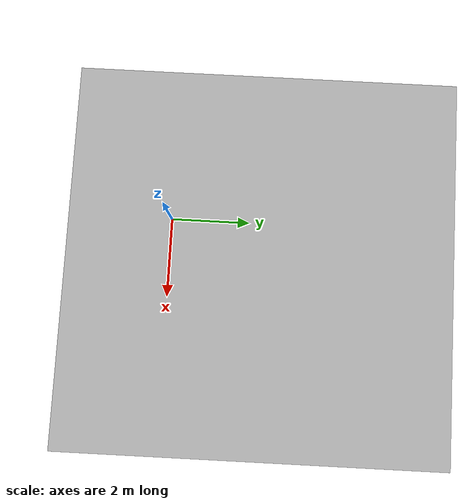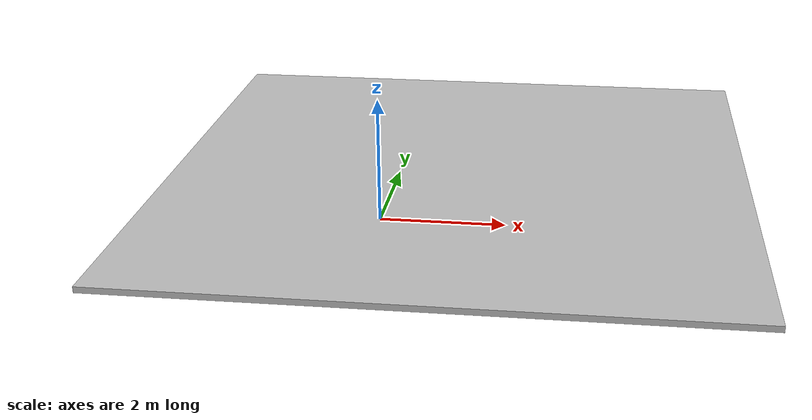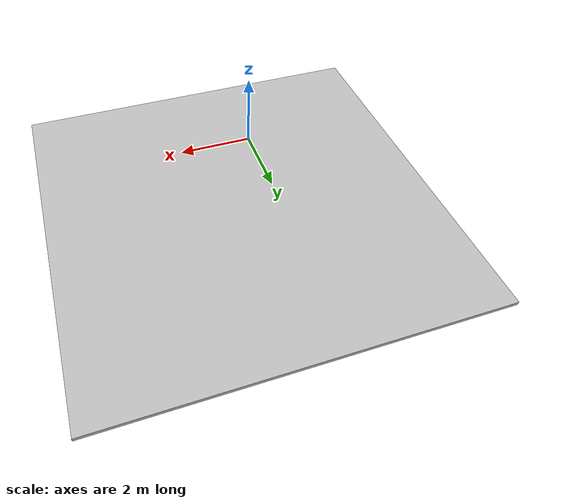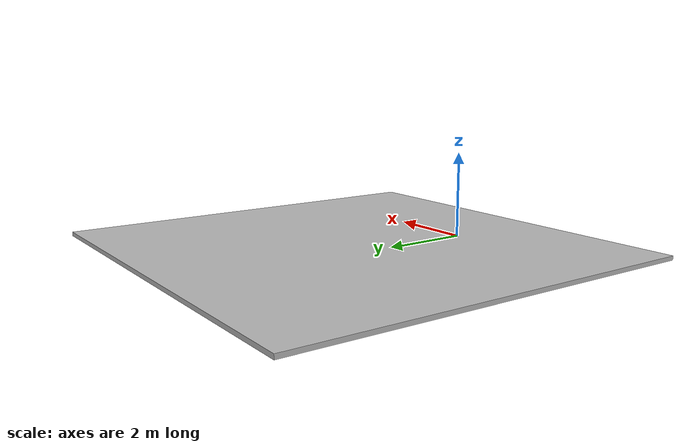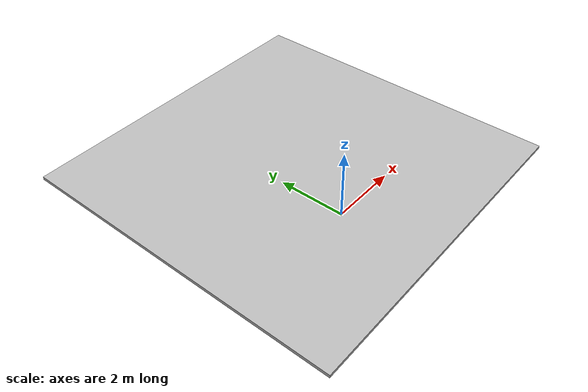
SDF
<?xml version="1.0"?>
<sdf version="1.4">
  <world name="default">
    <scene>
      <ambient>0 0 0 1</ambient>
      <shadows>0</shadows>
      <grid>0</grid>
      <background>0.7 0.7 0.7 1</background>
    </scene>
    <include>
      <uri>model://sun</uri>
    </include>
    <model name="ground">
      <pose>1 2.3 -.1 0 0 0</pose>
      <static>1</static>
      <link name="ground">
        <collision name="ground_coll">
          <geometry>
            <box>
              <size>10 10 .1</size>
            </box>
          </geometry>
          <surface>
            <contact>
              <ode/>
            </contact>
          </surface>
        </collision>
        <visual name="ground_vis">
          <geometry>
            <box>
              <size>10 10 .1</size>
            </box>
          </geometry>
          <material>
            <script>
              <uri>file:///home/riveria/CodeProjects/ROS/catkin_ws/src/psi/worlds/course.material</uri>
              <name>course</name>
            </script>
          </material>
        </visual>
      </link>
    </model>
  </world>
</sdf>
